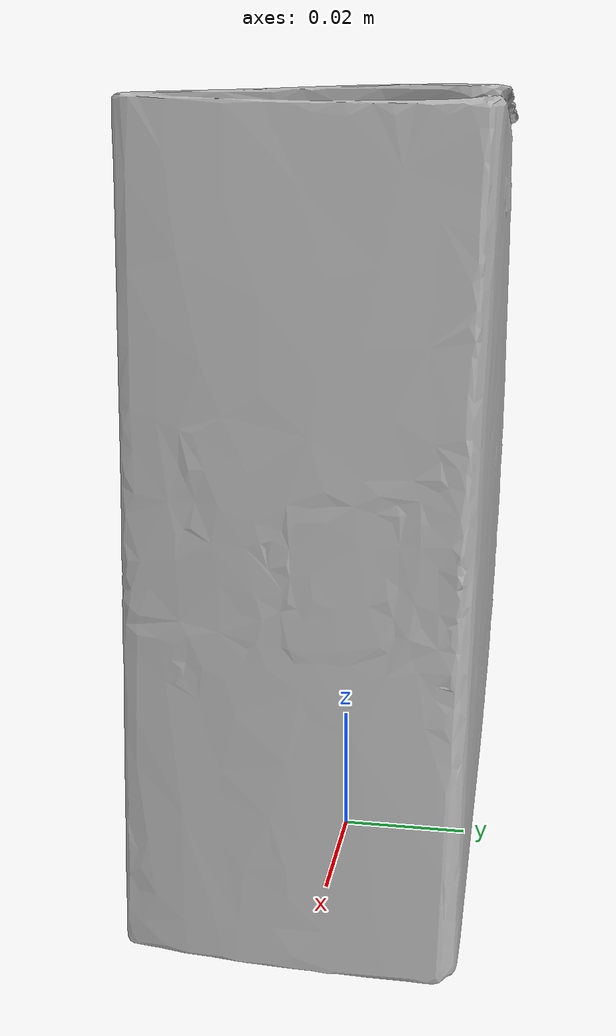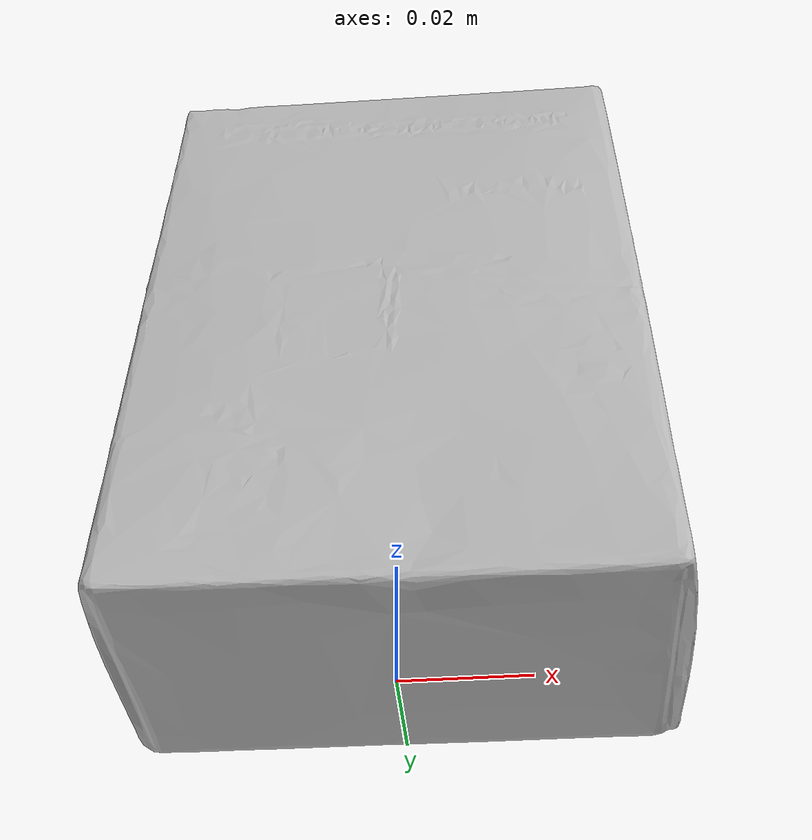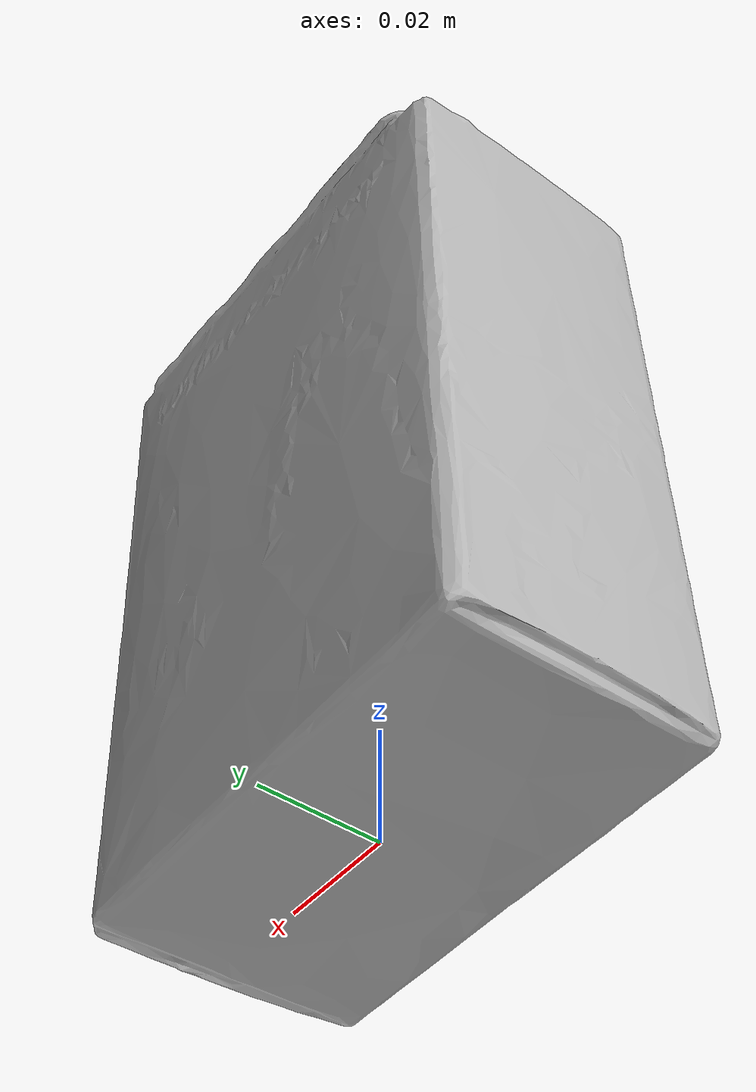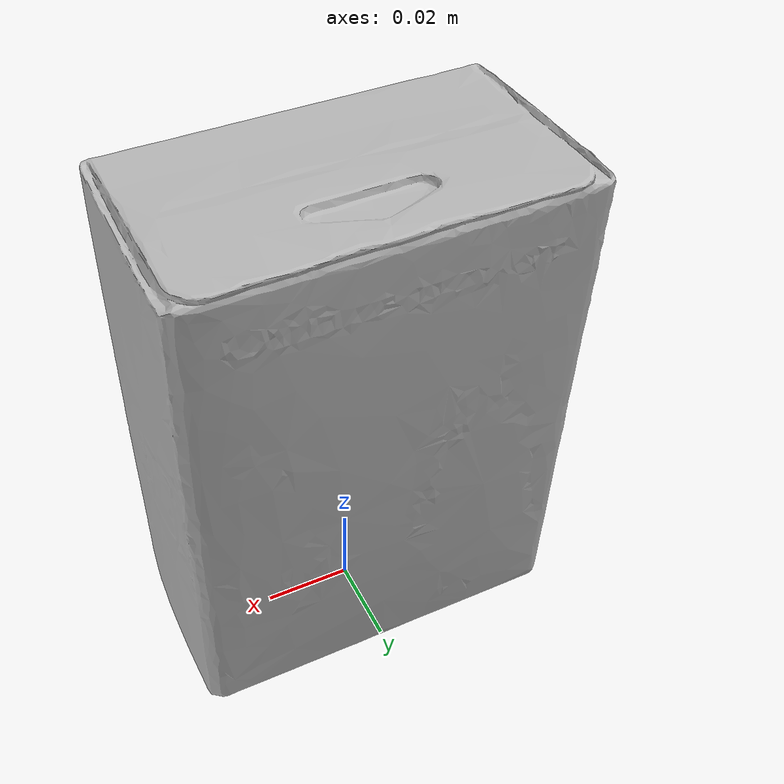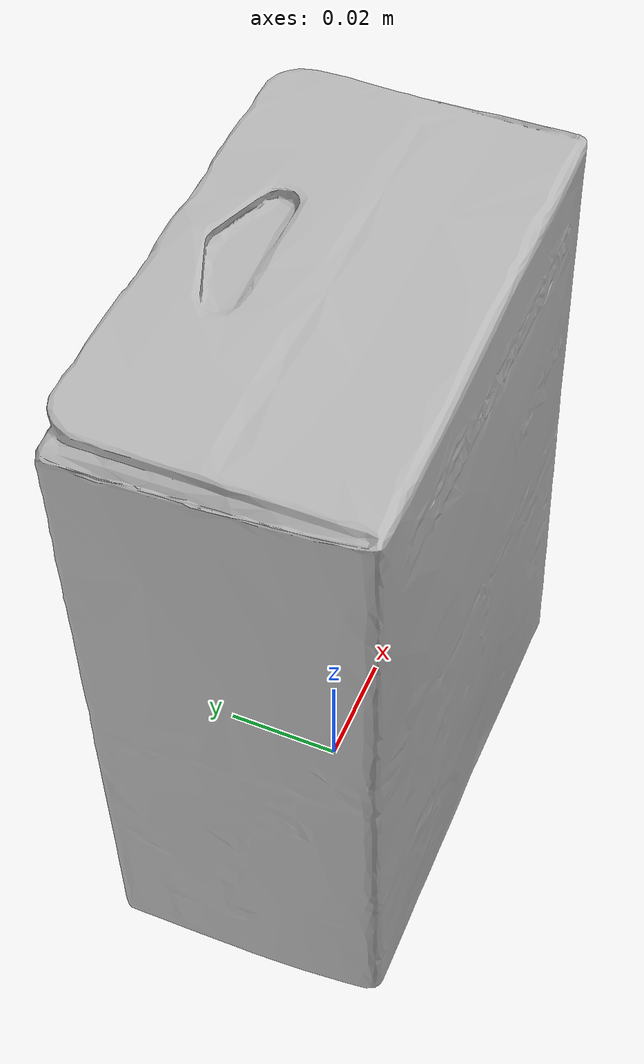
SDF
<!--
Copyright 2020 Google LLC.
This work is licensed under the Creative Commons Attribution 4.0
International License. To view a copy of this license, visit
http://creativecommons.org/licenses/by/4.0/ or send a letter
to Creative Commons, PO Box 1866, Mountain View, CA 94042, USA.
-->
<?xml version="1.0" ?>
<sdf version="1.6">
  <model name="Office_Depot_HP_71_Remanufactured_Ink_Cartridge_Black">
    <link name="link_0">
      <visual name="visual">
        <geometry>
          <mesh>
            <uri>meshes/model.obj</uri>
          </mesh>
        </geometry>
      </visual>
      <collision name="collision_0">
        <geometry>
          <mesh>
            <uri>meshes/model.obj</uri>
          </mesh>
        </geometry>
      </collision>
    </link>
  </model>
</sdf>
